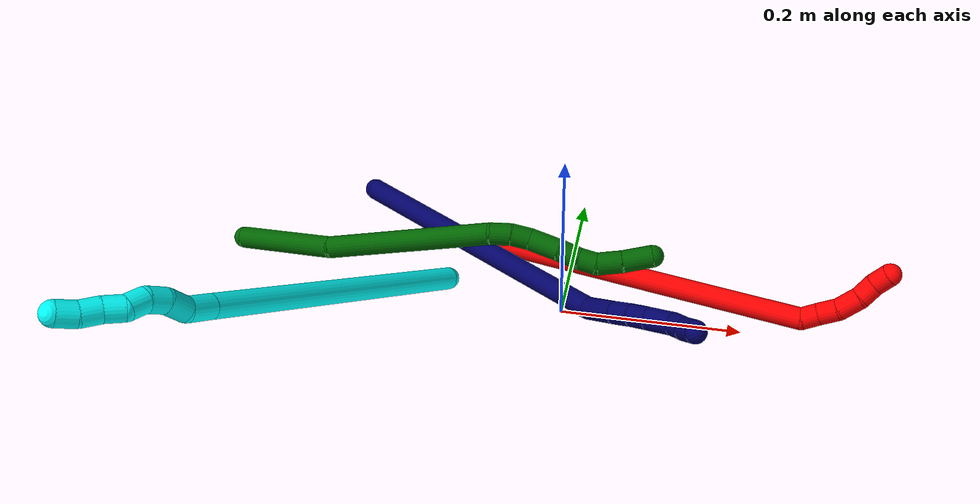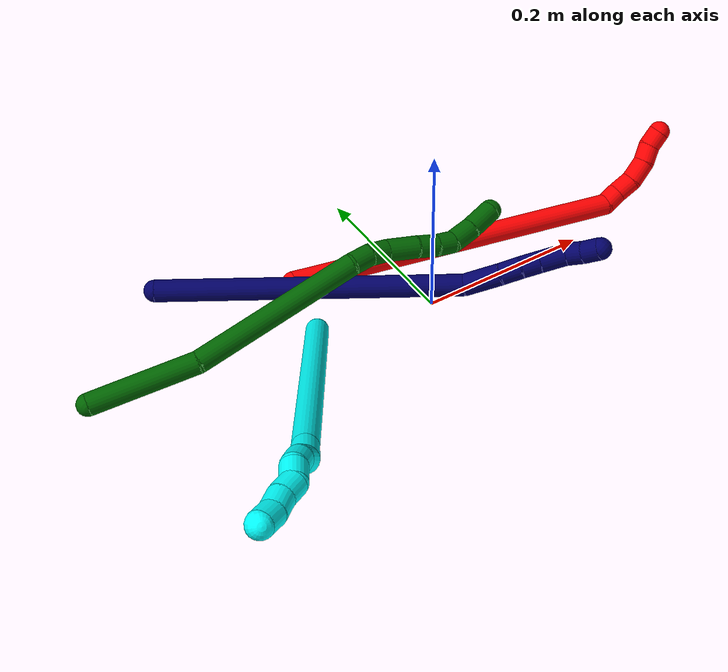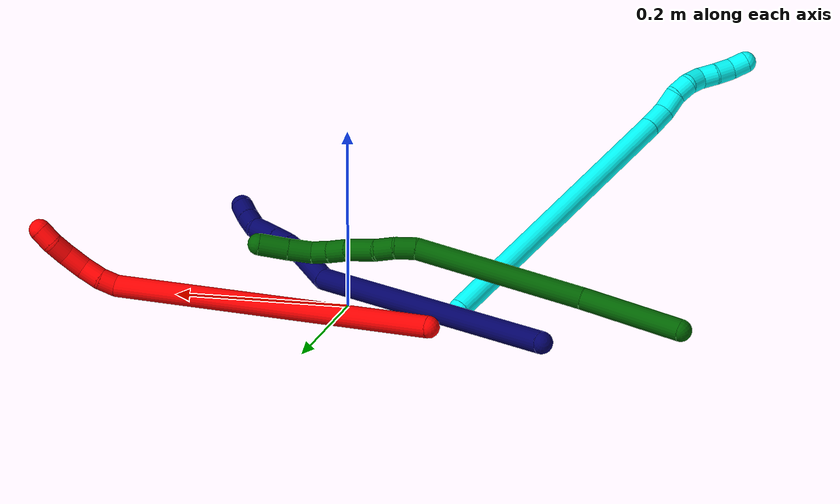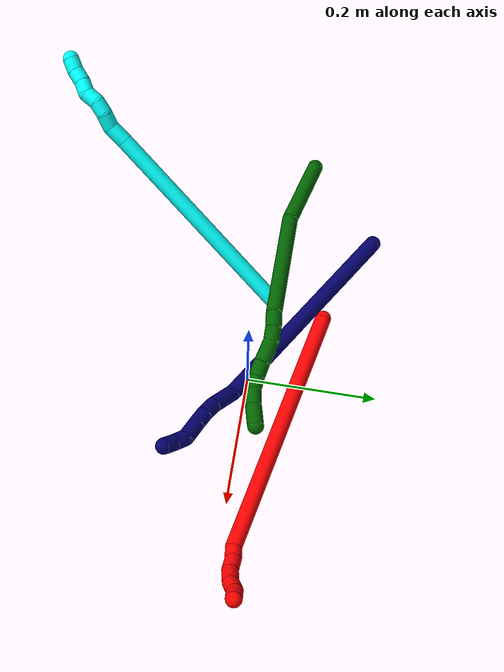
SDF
<sdf version="1.7">
 <world name="default">
  <model name="2">
   <static>0</static>
   <link name="2">
    <collision name="collision-cylinder-e_1_1_4">
     <pose>0.191513 -0.035185 0.012553 1.22811 1.37815 1.05228</pose>
     <geometry><cylinder><radius>0.0125</radius><length>0.390245</length></cylinder></geometry>
     <surface>
      <friction><ode><mu>1.16</mu><mu2>1.16</mu2><slip1>0</slip1><slip2>0</slip2></ode></friction>
      <contact><ode><kp>1e+06</kp><kd>1</kd><max_vel>0</max_vel><min_depth>0.001</min_depth></ode></contact>
     </surface>
    </collision>
    <visual name="visual-cylinder-e_1_1_4">
     <pose>0.191513 -0.035185 0.012553 1.22811 1.37815 1.05228</pose>
     <geometry><cylinder><radius>0.0125</radius><length>0.390245</length></cylinder></geometry>
     <material><ambient>1 0 0 1</ambient></material>
    </visual>
    <collision name="collision-cylinder-e_2_4_5">
     <pose>0.392519 -0.067656 0.023351 -2.14477 1.24267 -1.8416</pose>
     <geometry><cylinder><radius>0.0125</radius><length>0.020057</length></cylinder></geometry>
     <surface>
      <friction><ode><mu>1.16</mu><mu2>1.16</mu2><slip1>0</slip1><slip2>0</slip2></ode></friction>
      <contact><ode><kp>1e+06</kp><kd>1</kd><max_vel>0</max_vel><min_depth>0.001</min_depth></ode></contact>
     </surface>
    </collision>
    <visual name="visual-cylinder-e_2_4_5">
     <pose>0.392519 -0.067656 0.023351 -2.14477 1.24267 -1.8416</pose>
     <geometry><cylinder><radius>0.0125</radius><length>0.020057</length></cylinder></geometry>
     <material><ambient>1 0 0 1</ambient></material>
    </visual>
    <collision name="collision-cylinder-e_3_5_6">
     <pose>0.412744 -0.061145 0.022026 -1.45808 1.22869 -1.12446</pose>
     <geometry><cylinder><radius>0.0125</radius><length>0.022783</length></cylinder></geometry>
     <surface>
      <friction><ode><mu>1.16</mu><mu2>1.16</mu2><slip1>0</slip1><slip2>0</slip2></ode></friction>
      <contact><ode><kp>1e+06</kp><kd>1</kd><max_vel>0</max_vel><min_depth>0.001</min_depth></ode></contact>
     </surface>
    </collision>
    <visual name="visual-cylinder-e_3_5_6">
     <pose>0.412744 -0.061145 0.022026 -1.45808 1.22869 -1.12446</pose>
     <geometry><cylinder><radius>0.0125</radius><length>0.022783</length></cylinder></geometry>
     <material><ambient>1 0 0 1</ambient></material>
    </visual>
    <collision name="collision-cylinder-e_4_6_7">
     <pose>0.434331 -0.05053 0.020582 -1.83898 0.99353 -1.23638</pose>
     <geometry><cylinder><radius>0.0125</radius><length>0.025911</length></cylinder></geometry>
     <surface>
      <friction><ode><mu>1.16</mu><mu2>1.16</mu2><slip1>0</slip1><slip2>0</slip2></ode></friction>
      <contact><ode><kp>1e+06</kp><kd>1</kd><max_vel>0</max_vel><min_depth>0.001</min_depth></ode></contact>
     </surface>
    </collision>
    <visual name="visual-cylinder-e_4_6_7">
     <pose>0.434331 -0.05053 0.020582 -1.83898 0.99353 -1.23638</pose>
     <geometry><cylinder><radius>0.0125</radius><length>0.025911</length></cylinder></geometry>
     <material><ambient>1 0 0 1</ambient></material>
    </visual>
    <collision name="collision-cylinder-e_5_7_8">
     <pose>0.452387 -0.036876 0.015407 -2.02071 0.758856 -1.13208</pose>
     <geometry><cylinder><radius>0.0125</radius><length>0.020927</length></cylinder></geometry>
     <surface>
      <friction><ode><mu>1.16</mu><mu2>1.16</mu2><slip1>0</slip1><slip2>0</slip2></ode></friction>
      <contact><ode><kp>1e+06</kp><kd>1</kd><max_vel>0</max_vel><min_depth>0.001</min_depth></ode></contact>
     </surface>
    </collision>
    <visual name="visual-cylinder-e_5_7_8">
     <pose>0.452387 -0.036876 0.015407 -2.02071 0.758856 -1.13208</pose>
     <geometry><cylinder><radius>0.0125</radius><length>0.020927</length></cylinder></geometry>
     <material><ambient>1 0 0 1</ambient></material>
    </visual>
    <collision name="collision-cylinder-e_6_8_2">
     <pose>0.467515 -0.02388 0.012102 -1.57129 0.910298 -0.910691</pose>
     <geometry><cylinder><radius>0.0125</radius><length>0.020077</length></cylinder></geometry>
     <surface>
      <friction><ode><mu>1.16</mu><mu2>1.16</mu2><slip1>0</slip1><slip2>0</slip2></ode></friction>
      <contact><ode><kp>1e+06</kp><kd>1</kd><max_vel>0</max_vel><min_depth>0.001</min_depth></ode></contact>
     </surface>
    </collision>
    <visual name="visual-cylinder-e_6_8_2">
     <pose>0.467515 -0.02388 0.012102 -1.57129 0.910298 -0.910691</pose>
     <geometry><cylinder><radius>0.0125</radius><length>0.020077</length></cylinder></geometry>
     <material><ambient>1 0 0 1</ambient></material>
    </visual>
    <collision name="collision-sphere-2">
     <pose>0.475442 -0.017721 0.012099 0 -0 0</pose>
     <geometry><sphere><radius>0.0125</radius></sphere></geometry>
     <surface>
      <friction><ode><mu>1.16</mu><mu2>1.16</mu2><slip1>0</slip1><slip2>0</slip2></ode></friction>
      <contact><ode><kp>1e+06</kp><kd>1</kd><max_vel>0</max_vel><min_depth>0.001</min_depth></ode></contact>
     </surface>
    </collision>
    <visual name="visual-sphere-2">
     <pose>0.475442 -0.017721 0.012099 0 -0 0</pose>
     <geometry><sphere><radius>0.0125</radius></sphere></geometry>
     <material><ambient>1 0 0 1</ambient></material>
    </visual>
    <collision name="collision-sphere-4">
     <pose>0.383026 -0.07037 0.025106 0 -0 0</pose>
     <geometry><sphere><radius>0.0125</radius></sphere></geometry>
     <surface>
      <friction><ode><mu>1.16</mu><mu2>1.16</mu2><slip1>0</slip1><slip2>0</slip2></ode></friction>
      <contact><ode><kp>1e+06</kp><kd>1</kd><max_vel>0</max_vel><min_depth>0.001</min_depth></ode></contact>
     </surface>
    </collision>
    <visual name="visual-sphere-4">
     <pose>0.383026 -0.07037 0.025106 0 -0 0</pose>
     <geometry><sphere><radius>0.0125</radius></sphere></geometry>
     <material><ambient>1 0 0 1</ambient></material>
    </visual>
    <collision name="collision-sphere-1">
     <geometry><sphere><radius>0.0125</radius></sphere></geometry>
     <surface>
      <friction><ode><mu>1.16</mu><mu2>1.16</mu2><slip1>0</slip1><slip2>0</slip2></ode></friction>
      <contact><ode><kp>1e+06</kp><kd>1</kd><max_vel>0</max_vel><min_depth>0.001</min_depth></ode></contact>
     </surface>
    </collision>
    <visual name="visual-sphere-1">
     <geometry><sphere><radius>0.0125</radius></sphere></geometry>
     <material><ambient>1 0 0 1</ambient></material>
    </visual>
    <collision name="collision-sphere-8">
     <pose>0.459587 -0.030039 0.012105 0 -0 0</pose>
     <geometry><sphere><radius>0.0125</radius></sphere></geometry>
     <surface>
      <friction><ode><mu>1.16</mu><mu2>1.16</mu2><slip1>0</slip1><slip2>0</slip2></ode></friction>
      <contact><ode><kp>1e+06</kp><kd>1</kd><max_vel>0</max_vel><min_depth>0.001</min_depth></ode></contact>
     </surface>
    </collision>
    <visual name="visual-sphere-8">
     <pose>0.459587 -0.030039 0.012105 0 -0 0</pose>
     <geometry><sphere><radius>0.0125</radius></sphere></geometry>
     <material><ambient>1 0 0 1</ambient></material>
    </visual>
    <collision name="collision-sphere-5">
     <pose>0.402013 -0.064942 0.021596 0 -0 0</pose>
     <geometry><sphere><radius>0.0125</radius></sphere></geometry>
     <surface>
      <friction><ode><mu>1.16</mu><mu2>1.16</mu2><slip1>0</slip1><slip2>0</slip2></ode></friction>
      <contact><ode><kp>1e+06</kp><kd>1</kd><max_vel>0</max_vel><min_depth>0.001</min_depth></ode></contact>
     </surface>
    </collision>
    <visual name="visual-sphere-5">
     <pose>0.402013 -0.064942 0.021596 0 -0 0</pose>
     <geometry><sphere><radius>0.0125</radius></sphere></geometry>
     <material><ambient>1 0 0 1</ambient></material>
    </visual>
    <collision name="collision-sphere-6">
     <pose>0.423475 -0.057348 0.022456 0 -0 0</pose>
     <geometry><sphere><radius>0.0125</radius></sphere></geometry>
     <surface>
      <friction><ode><mu>1.16</mu><mu2>1.16</mu2><slip1>0</slip1><slip2>0</slip2></ode></friction>
      <contact><ode><kp>1e+06</kp><kd>1</kd><max_vel>0</max_vel><min_depth>0.001</min_depth></ode></contact>
     </surface>
    </collision>
    <visual name="visual-sphere-6">
     <pose>0.423475 -0.057348 0.022456 0 -0 0</pose>
     <geometry><sphere><radius>0.0125</radius></sphere></geometry>
     <material><ambient>1 0 0 1</ambient></material>
    </visual>
    <collision name="collision-sphere-7">
     <pose>0.445187 -0.043713 0.018709 0 -0 0</pose>
     <geometry><sphere><radius>0.0125</radius></sphere></geometry>
     <surface>
      <friction><ode><mu>1.16</mu><mu2>1.16</mu2><slip1>0</slip1><slip2>0</slip2></ode></friction>
      <contact><ode><kp>1e+06</kp><kd>1</kd><max_vel>0</max_vel><min_depth>0.001</min_depth></ode></contact>
     </surface>
    </collision>
    <visual name="visual-sphere-7">
     <pose>0.445187 -0.043713 0.018709 0 -0 0</pose>
     <geometry><sphere><radius>0.0125</radius></sphere></geometry>
     <material><ambient>1 0 0 1</ambient></material>
    </visual>
    <inertial>
     <pose>0.244241 -0.038083 0.013935 0 -0 0</pose>
     <mass>0.5</mass>
     <inertia>
      <ixx>0.001332</ixx>
      <ixy>0</ixy>
      <ixz>0</ixz>
      <iyy>0.005643</iyy>
      <iyz>0</iyz>
      <izz>-0.003991</izz>
     </inertia>
    </inertial>
   </link>
   <pose>-0.117367 0.102978 0.011497 1.36763 -0.165202 -0.110599</pose>
  </model>
  <model name="3">
   <static>0</static>
   <link name="3">
    <collision name="collision-cylinder-e_1_1_4">
     <pose>-0.026283 -0.049452 0.163172 0.294264 -0.152947 -0.022711</pose>
     <geometry><cylinder><radius>0.0125</radius><length>0.34503</length></cylinder></geometry>
     <surface>
      <friction><ode><mu>1.16</mu><mu2>1.16</mu2><slip1>0</slip1><slip2>0</slip2></ode></friction>
      <contact><ode><kp>1e+06</kp><kd>1</kd><max_vel>0</max_vel><min_depth>0.001</min_depth></ode></contact>
     </surface>
    </collision>
    <visual name="visual-cylinder-e_1_1_4">
     <pose>-0.026283 -0.049452 0.163172 0.294264 -0.152947 -0.022711</pose>
     <geometry><cylinder><radius>0.0125</radius><length>0.34503</length></cylinder></geometry>
     <material><ambient>0.003922 1 0.996078 1</ambient></material>
    </visual>
    <collision name="collision-cylinder-e_2_4_5">
     <pose>-0.054302 -0.102875 0.340395 0.275486 -0.118378 -0.016428</pose>
     <geometry><cylinder><radius>0.0125</radius><length>0.029407</length></cylinder></geometry>
     <surface>
      <friction><ode><mu>1.16</mu><mu2>1.16</mu2><slip1>0</slip1><slip2>0</slip2></ode></friction>
      <contact><ode><kp>1e+06</kp><kd>1</kd><max_vel>0</max_vel><min_depth>0.001</min_depth></ode></contact>
     </surface>
    </collision>
    <visual name="visual-cylinder-e_2_4_5">
     <pose>-0.054302 -0.102875 0.340395 0.275486 -0.118378 -0.016428</pose>
     <geometry><cylinder><radius>0.0125</radius><length>0.029407</length></cylinder></geometry>
     <material><ambient>0.003922 1 0.996078 1</ambient></material>
    </visual>
    <collision name="collision-cylinder-e_3_5_6">
     <pose>-0.060484 -0.105799 0.365669 -0.092973 -0.375601 0.017681</pose>
     <geometry><cylinder><radius>0.0125</radius><length>0.024236</length></cylinder></geometry>
     <surface>
      <friction><ode><mu>1.16</mu><mu2>1.16</mu2><slip1>0</slip1><slip2>0</slip2></ode></friction>
      <contact><ode><kp>1e+06</kp><kd>1</kd><max_vel>0</max_vel><min_depth>0.001</min_depth></ode></contact>
     </surface>
    </collision>
    <visual name="visual-cylinder-e_3_5_6">
     <pose>-0.060484 -0.105799 0.365669 -0.092973 -0.375601 0.017681</pose>
     <geometry><cylinder><radius>0.0125</radius><length>0.024236</length></cylinder></geometry>
     <material><ambient>0.003922 1 0.996078 1</ambient></material>
    </visual>
    <collision name="collision-cylinder-e_4_6_7">
     <pose>-0.068228 -0.107142 0.386208 0.251067 -0.330456 -0.04208</pose>
     <geometry><cylinder><radius>0.0125</radius><length>0.020332</length></cylinder></geometry>
     <surface>
      <friction><ode><mu>1.16</mu><mu2>1.16</mu2><slip1>0</slip1><slip2>0</slip2></ode></friction>
      <contact><ode><kp>1e+06</kp><kd>1</kd><max_vel>0</max_vel><min_depth>0.001</min_depth></ode></contact>
     </surface>
    </collision>
    <visual name="visual-cylinder-e_4_6_7">
     <pose>-0.068228 -0.107142 0.386208 0.251067 -0.330456 -0.04208</pose>
     <geometry><cylinder><radius>0.0125</radius><length>0.020332</length></cylinder></geometry>
     <material><ambient>0.003922 1 0.996078 1</ambient></material>
    </visual>
    <collision name="collision-cylinder-e_5_7_8">
     <pose>-0.072146 -0.115159 0.403977 0.587366 -0.060905 -0.018425</pose>
     <geometry><cylinder><radius>0.0125</radius><length>0.02035</length></cylinder></geometry>
     <surface>
      <friction><ode><mu>1.16</mu><mu2>1.16</mu2><slip1>0</slip1><slip2>0</slip2></ode></friction>
      <contact><ode><kp>1e+06</kp><kd>1</kd><max_vel>0</max_vel><min_depth>0.001</min_depth></ode></contact>
     </surface>
    </collision>
    <visual name="visual-cylinder-e_5_7_8">
     <pose>-0.072146 -0.115159 0.403977 0.587366 -0.060905 -0.018425</pose>
     <geometry><cylinder><radius>0.0125</radius><length>0.02035</length></cylinder></geometry>
     <material><ambient>0.003922 1 0.996078 1</ambient></material>
    </visual>
    <collision name="collision-cylinder-e_6_8_9">
     <pose>-0.078221 -0.125872 0.419177 0.645876 -0.57337 -0.196679</pose>
     <geometry><cylinder><radius>0.0125</radius><length>0.020113</length></cylinder></geometry>
     <surface>
      <friction><ode><mu>1.16</mu><mu2>1.16</mu2><slip1>0</slip1><slip2>0</slip2></ode></friction>
      <contact><ode><kp>1e+06</kp><kd>1</kd><max_vel>0</max_vel><min_depth>0.001</min_depth></ode></contact>
     </surface>
    </collision>
    <visual name="visual-cylinder-e_6_8_9">
     <pose>-0.078221 -0.125872 0.419177 0.645876 -0.57337 -0.196679</pose>
     <geometry><cylinder><radius>0.0125</radius><length>0.020113</length></cylinder></geometry>
     <material><ambient>0.003922 1 0.996078 1</ambient></material>
    </visual>
    <collision name="collision-cylinder-e_7_9_10">
     <pose>-0.087453 -0.136583 0.433591 0.633007 -0.378047 -0.125148</pose>
     <geometry><cylinder><radius>0.0125</radius><length>0.020466</length></cylinder></geometry>
     <surface>
      <friction><ode><mu>1.16</mu><mu2>1.16</mu2><slip1>0</slip1><slip2>0</slip2></ode></friction>
      <contact><ode><kp>1e+06</kp><kd>1</kd><max_vel>0</max_vel><min_depth>0.001</min_depth></ode></contact>
     </surface>
    </collision>
    <visual name="visual-cylinder-e_7_9_10">
     <pose>-0.087453 -0.136583 0.433591 0.633007 -0.378047 -0.125148</pose>
     <geometry><cylinder><radius>0.0125</radius><length>0.020466</length></cylinder></geometry>
     <material><ambient>0.003922 1 0.996078 1</ambient></material>
    </visual>
    <collision name="collision-cylinder-e_8_10_2">
     <pose>-0.096574 -0.146 0.448858 0.462738 -0.561714 -0.135717</pose>
     <geometry><cylinder><radius>0.0125</radius><length>0.020066</length></cylinder></geometry>
     <surface>
      <friction><ode><mu>1.16</mu><mu2>1.16</mu2><slip1>0</slip1><slip2>0</slip2></ode></friction>
      <contact><ode><kp>1e+06</kp><kd>1</kd><max_vel>0</max_vel><min_depth>0.001</min_depth></ode></contact>
     </surface>
    </collision>
    <visual name="visual-cylinder-e_8_10_2">
     <pose>-0.096574 -0.146 0.448858 0.462738 -0.561714 -0.135717</pose>
     <geometry><cylinder><radius>0.0125</radius><length>0.020066</length></cylinder></geometry>
     <material><ambient>0.003922 1 0.996078 1</ambient></material>
    </visual>
    <collision name="collision-sphere-2">
     <pose>-0.101918 -0.149791 0.456456 0 -0 0</pose>
     <geometry><sphere><radius>0.0125</radius></sphere></geometry>
     <surface>
      <friction><ode><mu>1.16</mu><mu2>1.16</mu2><slip1>0</slip1><slip2>0</slip2></ode></friction>
      <contact><ode><kp>1e+06</kp><kd>1</kd><max_vel>0</max_vel><min_depth>0.001</min_depth></ode></contact>
     </surface>
    </collision>
    <visual name="visual-sphere-2">
     <pose>-0.101918 -0.149791 0.456456 0 -0 0</pose>
     <geometry><sphere><radius>0.0125</radius></sphere></geometry>
     <material><ambient>0.003922 1 0.996078 1</ambient></material>
    </visual>
    <collision name="collision-sphere-10">
     <pose>-0.09123 -0.142209 0.441259 0 -0 0</pose>
     <geometry><sphere><radius>0.0125</radius></sphere></geometry>
     <surface>
      <friction><ode><mu>1.16</mu><mu2>1.16</mu2><slip1>0</slip1><slip2>0</slip2></ode></friction>
      <contact><ode><kp>1e+06</kp><kd>1</kd><max_vel>0</max_vel><min_depth>0.001</min_depth></ode></contact>
     </surface>
    </collision>
    <visual name="visual-sphere-10">
     <pose>-0.09123 -0.142209 0.441259 0 -0 0</pose>
     <geometry><sphere><radius>0.0125</radius></sphere></geometry>
     <material><ambient>0.003922 1 0.996078 1</ambient></material>
    </visual>
    <collision name="collision-sphere-9">
     <pose>-0.083676 -0.130957 0.425924 0 -0 0</pose>
     <geometry><sphere><radius>0.0125</radius></sphere></geometry>
     <surface>
      <friction><ode><mu>1.16</mu><mu2>1.16</mu2><slip1>0</slip1><slip2>0</slip2></ode></friction>
      <contact><ode><kp>1e+06</kp><kd>1</kd><max_vel>0</max_vel><min_depth>0.001</min_depth></ode></contact>
     </surface>
    </collision>
    <visual name="visual-sphere-9">
     <pose>-0.083676 -0.130957 0.425924 0 -0 0</pose>
     <geometry><sphere><radius>0.0125</radius></sphere></geometry>
     <material><ambient>0.003922 1 0.996078 1</ambient></material>
    </visual>
    <collision name="collision-sphere-4">
     <pose>-0.052566 -0.098903 0.326345 0 -0 0</pose>
     <geometry><sphere><radius>0.0125</radius></sphere></geometry>
     <surface>
      <friction><ode><mu>1.16</mu><mu2>1.16</mu2><slip1>0</slip1><slip2>0</slip2></ode></friction>
      <contact><ode><kp>1e+06</kp><kd>1</kd><max_vel>0</max_vel><min_depth>0.001</min_depth></ode></contact>
     </surface>
    </collision>
    <visual name="visual-sphere-4">
     <pose>-0.052566 -0.098903 0.326345 0 -0 0</pose>
     <geometry><sphere><radius>0.0125</radius></sphere></geometry>
     <material><ambient>0.003922 1 0.996078 1</ambient></material>
    </visual>
    <collision name="collision-sphere-1">
     <geometry><sphere><radius>0.0125</radius></sphere></geometry>
     <surface>
      <friction><ode><mu>1.16</mu><mu2>1.16</mu2><slip1>0</slip1><slip2>0</slip2></ode></friction>
      <contact><ode><kp>1e+06</kp><kd>1</kd><max_vel>0</max_vel><min_depth>0.001</min_depth></ode></contact>
     </surface>
    </collision>
    <visual name="visual-sphere-1">
     <geometry><sphere><radius>0.0125</radius></sphere></geometry>
     <material><ambient>0.003922 1 0.996078 1</ambient></material>
    </visual>
    <collision name="collision-sphere-8">
     <pose>-0.072765 -0.120787 0.412431 0 -0 0</pose>
     <geometry><sphere><radius>0.0125</radius></sphere></geometry>
     <surface>
      <friction><ode><mu>1.16</mu><mu2>1.16</mu2><slip1>0</slip1><slip2>0</slip2></ode></friction>
      <contact><ode><kp>1e+06</kp><kd>1</kd><max_vel>0</max_vel><min_depth>0.001</min_depth></ode></contact>
     </surface>
    </collision>
    <visual name="visual-sphere-8">
     <pose>-0.072765 -0.120787 0.412431 0 -0 0</pose>
     <geometry><sphere><radius>0.0125</radius></sphere></geometry>
     <material><ambient>0.003922 1 0.996078 1</ambient></material>
    </visual>
    <collision name="collision-sphere-5">
     <pose>-0.056039 -0.106846 0.354444 0 -0 0</pose>
     <geometry><sphere><radius>0.0125</radius></sphere></geometry>
     <surface>
      <friction><ode><mu>1.16</mu><mu2>1.16</mu2><slip1>0</slip1><slip2>0</slip2></ode></friction>
      <contact><ode><kp>1e+06</kp><kd>1</kd><max_vel>0</max_vel><min_depth>0.001</min_depth></ode></contact>
     </surface>
    </collision>
    <visual name="visual-sphere-5">
     <pose>-0.056039 -0.106846 0.354444 0 -0 0</pose>
     <geometry><sphere><radius>0.0125</radius></sphere></geometry>
     <material><ambient>0.003922 1 0.996078 1</ambient></material>
    </visual>
    <collision name="collision-sphere-6">
     <pose>-0.06493 -0.104753 0.376894 0 -0 0</pose>
     <geometry><sphere><radius>0.0125</radius></sphere></geometry>
     <surface>
      <friction><ode><mu>1.16</mu><mu2>1.16</mu2><slip1>0</slip1><slip2>0</slip2></ode></friction>
      <contact><ode><kp>1e+06</kp><kd>1</kd><max_vel>0</max_vel><min_depth>0.001</min_depth></ode></contact>
     </surface>
    </collision>
    <visual name="visual-sphere-6">
     <pose>-0.06493 -0.104753 0.376894 0 -0 0</pose>
     <geometry><sphere><radius>0.0125</radius></sphere></geometry>
     <material><ambient>0.003922 1 0.996078 1</ambient></material>
    </visual>
    <collision name="collision-sphere-7">
     <pose>-0.071527 -0.109531 0.395523 0 -0 0</pose>
     <geometry><sphere><radius>0.0125</radius></sphere></geometry>
     <surface>
      <friction><ode><mu>1.16</mu><mu2>1.16</mu2><slip1>0</slip1><slip2>0</slip2></ode></friction>
      <contact><ode><kp>1e+06</kp><kd>1</kd><max_vel>0</max_vel><min_depth>0.001</min_depth></ode></contact>
     </surface>
    </collision>
    <visual name="visual-sphere-7">
     <pose>-0.071527 -0.109531 0.395523 0 -0 0</pose>
     <geometry><sphere><radius>0.0125</radius></sphere></geometry>
     <material><ambient>0.003922 1 0.996078 1</ambient></material>
    </visual>
    <inertial>
     <pose>-0.040575 -0.07086 0.235113 0 -0 0</pose>
     <mass>0.5</mass>
     <inertia>
      <ixx>0.003322</ixx>
      <ixy>0</ixy>
      <ixz>0</ixz>
      <iyy>0.003214</iyy>
      <iyz>0</iyz>
      <izz>0.001552</izz>
     </inertia>
    </inertial>
   </link>
   <pose>-0.134037 0.022074 0.011498 0.829934 0.236347 -0.498294</pose>
  </model>
  <model name="6">
   <static>0</static>
   <link name="6">
    <collision name="collision-cylinder-e_1_1_4">
     <pose>0.058253 -0.014541 0.001764 1.45008 1.32446 1.20907</pose>
     <geometry><cylinder><radius>0.0125</radius><length>0.120132</length></cylinder></geometry>
     <surface>
      <friction><ode><mu>1.16</mu><mu2>1.16</mu2><slip1>0</slip1><slip2>0</slip2></ode></friction>
      <contact><ode><kp>1e+06</kp><kd>1</kd><max_vel>0</max_vel><min_depth>0.001</min_depth></ode></contact>
     </surface>
    </collision>
    <visual name="visual-cylinder-e_1_1_4">
     <pose>0.058253 -0.014541 0.001764 1.45008 1.32446 1.20907</pose>
     <geometry><cylinder><radius>0.0125</radius><length>0.120132</length></cylinder></geometry>
     <material><ambient>0 0.392157 0.003922 1</ambient></material>
    </visual>
    <collision name="collision-cylinder-e_2_4_5">
     <pose>0.203977 -0.064193 0.024389 1.0347 1.13397 0.695225</pose>
     <geometry><cylinder><radius>0.0125</radius><length>0.193073</length></cylinder></geometry>
     <surface>
      <friction><ode><mu>1.16</mu><mu2>1.16</mu2><slip1>0</slip1><slip2>0</slip2></ode></friction>
      <contact><ode><kp>1e+06</kp><kd>1</kd><max_vel>0</max_vel><min_depth>0.001</min_depth></ode></contact>
     </surface>
    </collision>
    <visual name="visual-cylinder-e_2_4_5">
     <pose>0.203977 -0.064193 0.024389 1.0347 1.13397 0.695225</pose>
     <geometry><cylinder><radius>0.0125</radius><length>0.193073</length></cylinder></geometry>
     <material><ambient>0 0.392157 0.003922 1</ambient></material>
    </visual>
    <collision name="collision-cylinder-e_3_5_6">
     <pose>0.302168 -0.101485 0.050139 0.419346 1.10767 0.261686</pose>
     <geometry><cylinder><radius>0.0125</radius><length>0.023965</length></cylinder></geometry>
     <surface>
      <friction><ode><mu>1.16</mu><mu2>1.16</mu2><slip1>0</slip1><slip2>0</slip2></ode></friction>
      <contact><ode><kp>1e+06</kp><kd>1</kd><max_vel>0</max_vel><min_depth>0.001</min_depth></ode></contact>
     </surface>
    </collision>
    <visual name="visual-cylinder-e_3_5_6">
     <pose>0.302168 -0.101485 0.050139 0.419346 1.10767 0.261686</pose>
     <geometry><cylinder><radius>0.0125</radius><length>0.023965</length></cylinder></geometry>
     <material><ambient>0 0.392157 0.003922 1</ambient></material>
    </visual>
    <collision name="collision-cylinder-e_4_6_7">
     <pose>0.323194 -0.103447 0.058922 -0.055688 1.20906 -0.038475</pose>
     <geometry><cylinder><radius>0.0125</radius><length>0.022037</length></cylinder></geometry>
     <surface>
      <friction><ode><mu>1.16</mu><mu2>1.16</mu2><slip1>0</slip1><slip2>0</slip2></ode></friction>
      <contact><ode><kp>1e+06</kp><kd>1</kd><max_vel>0</max_vel><min_depth>0.001</min_depth></ode></contact>
     </surface>
    </collision>
    <visual name="visual-cylinder-e_4_6_7">
     <pose>0.323194 -0.103447 0.058922 -0.055688 1.20906 -0.038475</pose>
     <geometry><cylinder><radius>0.0125</radius><length>0.022037</length></cylinder></geometry>
     <material><ambient>0 0.392157 0.003922 1</ambient></material>
    </visual>
    <collision name="collision-cylinder-e_5_7_8">
     <pose>0.351139 -0.102481 0.06477 -0.365775 1.45266 -0.325691</pose>
     <geometry><cylinder><radius>0.0125</radius><length>0.035529</length></cylinder></geometry>
     <surface>
      <friction><ode><mu>1.16</mu><mu2>1.16</mu2><slip1>0</slip1><slip2>0</slip2></ode></friction>
      <contact><ode><kp>1e+06</kp><kd>1</kd><max_vel>0</max_vel><min_depth>0.001</min_depth></ode></contact>
     </surface>
    </collision>
    <visual name="visual-cylinder-e_5_7_8">
     <pose>0.351139 -0.102481 0.06477 -0.365775 1.45266 -0.325691</pose>
     <geometry><cylinder><radius>0.0125</radius><length>0.035529</length></cylinder></geometry>
     <material><ambient>0 0.392157 0.003922 1</ambient></material>
    </visual>
    <collision name="collision-cylinder-e_6_8_9">
     <pose>0.380126 -0.100393 0.068766 -0.580747 1.3589 -0.473683</pose>
     <geometry><cylinder><radius>0.0125</radius><length>0.023211</length></cylinder></geometry>
     <surface>
      <friction><ode><mu>1.16</mu><mu2>1.16</mu2><slip1>0</slip1><slip2>0</slip2></ode></friction>
      <contact><ode><kp>1e+06</kp><kd>1</kd><max_vel>0</max_vel><min_depth>0.001</min_depth></ode></contact>
     </surface>
    </collision>
    <visual name="visual-cylinder-e_6_8_9">
     <pose>0.380126 -0.100393 0.068766 -0.580747 1.3589 -0.473683</pose>
     <geometry><cylinder><radius>0.0125</radius><length>0.023211</length></cylinder></geometry>
     <material><ambient>0 0.392157 0.003922 1</ambient></material>
    </visual>
    <collision name="collision-cylinder-e_7_9_10">
     <pose>0.401397 -0.098896 0.073261 -0.064409 1.32787 -0.050402</pose>
     <geometry><cylinder><radius>0.0125</radius><length>0.02045</length></cylinder></geometry>
     <surface>
      <friction><ode><mu>1.16</mu><mu2>1.16</mu2><slip1>0</slip1><slip2>0</slip2></ode></friction>
      <contact><ode><kp>1e+06</kp><kd>1</kd><max_vel>0</max_vel><min_depth>0.001</min_depth></ode></contact>
     </surface>
    </collision>
    <visual name="visual-cylinder-e_7_9_10">
     <pose>0.401397 -0.098896 0.073261 -0.064409 1.32787 -0.050402</pose>
     <geometry><cylinder><radius>0.0125</radius><length>0.02045</length></cylinder></geometry>
     <material><ambient>0 0.392157 0.003922 1</ambient></material>
    </visual>
    <collision name="collision-cylinder-e_8_10_11">
     <pose>0.4233 -0.10305 0.081378 0.650857 1.03466 0.379387</pose>
     <geometry><cylinder><radius>0.0125</radius><length>0.027868</length></cylinder></geometry>
     <surface>
      <friction><ode><mu>1.16</mu><mu2>1.16</mu2><slip1>0</slip1><slip2>0</slip2></ode></friction>
      <contact><ode><kp>1e+06</kp><kd>1</kd><max_vel>0</max_vel><min_depth>0.001</min_depth></ode></contact>
     </surface>
    </collision>
    <visual name="visual-cylinder-e_8_10_11">
     <pose>0.4233 -0.10305 0.081378 0.650857 1.03466 0.379387</pose>
     <geometry><cylinder><radius>0.0125</radius><length>0.027868</length></cylinder></geometry>
     <material><ambient>0 0.392157 0.003922 1</ambient></material>
    </visual>
    <collision name="collision-cylinder-e_9_11_2">
     <pose>0.448993 -0.113805 0.094454 0.715515 0.949326 0.379573</pose>
     <geometry><cylinder><radius>0.0125</radius><length>0.033736</length></cylinder></geometry>
     <surface>
      <friction><ode><mu>1.16</mu><mu2>1.16</mu2><slip1>0</slip1><slip2>0</slip2></ode></friction>
      <contact><ode><kp>1e+06</kp><kd>1</kd><max_vel>0</max_vel><min_depth>0.001</min_depth></ode></contact>
     </surface>
    </collision>
    <visual name="visual-cylinder-e_9_11_2">
     <pose>0.448993 -0.113805 0.094454 0.715515 0.949326 0.379573</pose>
     <geometry><cylinder><radius>0.0125</radius><length>0.033736</length></cylinder></geometry>
     <material><ambient>0 0.392157 0.003922 1</ambient></material>
    </visual>
    <collision name="collision-sphere-2">
     <pose>0.462708 -0.120248 0.101866 0 -0 0</pose>
     <geometry><sphere><radius>0.0125</radius></sphere></geometry>
     <surface>
      <friction><ode><mu>1.16</mu><mu2>1.16</mu2><slip1>0</slip1><slip2>0</slip2></ode></friction>
      <contact><ode><kp>1e+06</kp><kd>1</kd><max_vel>0</max_vel><min_depth>0.001</min_depth></ode></contact>
     </surface>
    </collision>
    <visual name="visual-sphere-2">
     <pose>0.462708 -0.120248 0.101866 0 -0 0</pose>
     <geometry><sphere><radius>0.0125</radius></sphere></geometry>
     <material><ambient>0 0.392157 0.003922 1</ambient></material>
    </visual>
    <collision name="collision-sphere-11">
     <pose>0.435279 -0.107362 0.087041 0 -0 0</pose>
     <geometry><sphere><radius>0.0125</radius></sphere></geometry>
     <surface>
      <friction><ode><mu>1.16</mu><mu2>1.16</mu2><slip1>0</slip1><slip2>0</slip2></ode></friction>
      <contact><ode><kp>1e+06</kp><kd>1</kd><max_vel>0</max_vel><min_depth>0.001</min_depth></ode></contact>
     </surface>
    </collision>
    <visual name="visual-sphere-11">
     <pose>0.435279 -0.107362 0.087041 0 -0 0</pose>
     <geometry><sphere><radius>0.0125</radius></sphere></geometry>
     <material><ambient>0 0.392157 0.003922 1</ambient></material>
    </visual>
    <collision name="collision-sphere-10">
     <pose>0.411321 -0.098737 0.075716 0 -0 0</pose>
     <geometry><sphere><radius>0.0125</radius></sphere></geometry>
     <surface>
      <friction><ode><mu>1.16</mu><mu2>1.16</mu2><slip1>0</slip1><slip2>0</slip2></ode></friction>
      <contact><ode><kp>1e+06</kp><kd>1</kd><max_vel>0</max_vel><min_depth>0.001</min_depth></ode></contact>
     </surface>
    </collision>
    <visual name="visual-sphere-10">
     <pose>0.411321 -0.098737 0.075716 0 -0 0</pose>
     <geometry><sphere><radius>0.0125</radius></sphere></geometry>
     <material><ambient>0 0.392157 0.003922 1</ambient></material>
    </visual>
    <collision name="collision-sphere-9">
     <pose>0.391472 -0.099054 0.070807 0 -0 0</pose>
     <geometry><sphere><radius>0.0125</radius></sphere></geometry>
     <surface>
      <friction><ode><mu>1.16</mu><mu2>1.16</mu2><slip1>0</slip1><slip2>0</slip2></ode></friction>
      <contact><ode><kp>1e+06</kp><kd>1</kd><max_vel>0</max_vel><min_depth>0.001</min_depth></ode></contact>
     </surface>
    </collision>
    <visual name="visual-sphere-9">
     <pose>0.391472 -0.099054 0.070807 0 -0 0</pose>
     <geometry><sphere><radius>0.0125</radius></sphere></geometry>
     <material><ambient>0 0.392157 0.003922 1</ambient></material>
    </visual>
    <collision name="collision-sphere-4">
     <pose>0.116505 -0.029082 0.003528 0 -0 0</pose>
     <geometry><sphere><radius>0.0125</radius></sphere></geometry>
     <surface>
      <friction><ode><mu>1.16</mu><mu2>1.16</mu2><slip1>0</slip1><slip2>0</slip2></ode></friction>
      <contact><ode><kp>1e+06</kp><kd>1</kd><max_vel>0</max_vel><min_depth>0.001</min_depth></ode></contact>
     </surface>
    </collision>
    <visual name="visual-sphere-4">
     <pose>0.116505 -0.029082 0.003528 0 -0 0</pose>
     <geometry><sphere><radius>0.0125</radius></sphere></geometry>
     <material><ambient>0 0.392157 0.003922 1</ambient></material>
    </visual>
    <collision name="collision-sphere-1">
     <geometry><sphere><radius>0.0125</radius></sphere></geometry>
     <surface>
      <friction><ode><mu>1.16</mu><mu2>1.16</mu2><slip1>0</slip1><slip2>0</slip2></ode></friction>
      <contact><ode><kp>1e+06</kp><kd>1</kd><max_vel>0</max_vel><min_depth>0.001</min_depth></ode></contact>
     </surface>
    </collision>
    <visual name="visual-sphere-1">
     <geometry><sphere><radius>0.0125</radius></sphere></geometry>
     <material><ambient>0 0.392157 0.003922 1</ambient></material>
    </visual>
    <collision name="collision-sphere-8">
     <pose>0.36878 -0.101732 0.066726 0 -0 0</pose>
     <geometry><sphere><radius>0.0125</radius></sphere></geometry>
     <surface>
      <friction><ode><mu>1.16</mu><mu2>1.16</mu2><slip1>0</slip1><slip2>0</slip2></ode></friction>
      <contact><ode><kp>1e+06</kp><kd>1</kd><max_vel>0</max_vel><min_depth>0.001</min_depth></ode></contact>
     </surface>
    </collision>
    <visual name="visual-sphere-8">
     <pose>0.36878 -0.101732 0.066726 0 -0 0</pose>
     <geometry><sphere><radius>0.0125</radius></sphere></geometry>
     <material><ambient>0 0.392157 0.003922 1</ambient></material>
    </visual>
    <collision name="collision-sphere-5">
     <pose>0.291448 -0.099305 0.04525 0 -0 0</pose>
     <geometry><sphere><radius>0.0125</radius></sphere></geometry>
     <surface>
      <friction><ode><mu>1.16</mu><mu2>1.16</mu2><slip1>0</slip1><slip2>0</slip2></ode></friction>
      <contact><ode><kp>1e+06</kp><kd>1</kd><max_vel>0</max_vel><min_depth>0.001</min_depth></ode></contact>
     </surface>
    </collision>
    <visual name="visual-sphere-5">
     <pose>0.291448 -0.099305 0.04525 0 -0 0</pose>
     <geometry><sphere><radius>0.0125</radius></sphere></geometry>
     <material><ambient>0 0.392157 0.003922 1</ambient></material>
    </visual>
    <collision name="collision-sphere-6">
     <pose>0.312888 -0.103664 0.055029 0 -0 0</pose>
     <geometry><sphere><radius>0.0125</radius></sphere></geometry>
     <surface>
      <friction><ode><mu>1.16</mu><mu2>1.16</mu2><slip1>0</slip1><slip2>0</slip2></ode></friction>
      <contact><ode><kp>1e+06</kp><kd>1</kd><max_vel>0</max_vel><min_depth>0.001</min_depth></ode></contact>
     </surface>
    </collision>
    <visual name="visual-sphere-6">
     <pose>0.312888 -0.103664 0.055029 0 -0 0</pose>
     <geometry><sphere><radius>0.0125</radius></sphere></geometry>
     <material><ambient>0 0.392157 0.003922 1</ambient></material>
    </visual>
    <collision name="collision-sphere-7">
     <pose>0.333499 -0.10323 0.062815 0 -0 0</pose>
     <geometry><sphere><radius>0.0125</radius></sphere></geometry>
     <surface>
      <friction><ode><mu>1.16</mu><mu2>1.16</mu2><slip1>0</slip1><slip2>0</slip2></ode></friction>
      <contact><ode><kp>1e+06</kp><kd>1</kd><max_vel>0</max_vel><min_depth>0.001</min_depth></ode></contact>
     </surface>
    </collision>
    <visual name="visual-sphere-7">
     <pose>0.333499 -0.10323 0.062815 0 -0 0</pose>
     <geometry><sphere><radius>0.0125</radius></sphere></geometry>
     <material><ambient>0 0.392157 0.003922 1</ambient></material>
    </visual>
    <inertial>
     <pose>0.23439 -0.067115 0.036541 0 -0 0</pose>
     <mass>0.5</mass>
     <inertia>
      <ixx>0.000453</ixx>
      <ixy>0</ixy>
      <ixz>0</ixz>
      <iyy>0.000892</iyy>
      <iyz>0</iyz>
      <izz>-0.000446</izz>
     </inertia>
    </inertial>
   </link>
   <pose>-0.388501 0.05372 0.012382 -1.91206 0.041976 -0.340173</pose>
  </model>
  <model name="7">
   <static>0</static>
   <link name="7">
    <collision name="collision-cylinder-e_1_1_4">
     <pose>0.115854 -0.008149 -0.125219 3.0766 0.74552 2.97572</pose>
     <geometry><cylinder><radius>0.0125</radius><length>0.341575</length></cylinder></geometry>
     <surface>
      <friction><ode><mu>1.16</mu><mu2>1.16</mu2><slip1>0</slip1><slip2>0</slip2></ode></friction>
      <contact><ode><kp>1e+06</kp><kd>1</kd><max_vel>0</max_vel><min_depth>0.001</min_depth></ode></contact>
     </surface>
    </collision>
    <visual name="visual-cylinder-e_1_1_4">
     <pose>0.115854 -0.008149 -0.125219 3.0766 0.74552 2.97572</pose>
     <geometry><cylinder><radius>0.0125</radius><length>0.341575</length></cylinder></geometry>
     <material><ambient>0.003922 0 0.403922 1</ambient></material>
    </visual>
    <collision name="collision-cylinder-e_2_4_5">
     <pose>0.248487 -0.025643 -0.261412 2.43623 0.86106 1.79036</pose>
     <geometry><cylinder><radius>0.0125</radius><length>0.044239</length></cylinder></geometry>
     <surface>
      <friction><ode><mu>1.16</mu><mu2>1.16</mu2><slip1>0</slip1><slip2>0</slip2></ode></friction>
      <contact><ode><kp>1e+06</kp><kd>1</kd><max_vel>0</max_vel><min_depth>0.001</min_depth></ode></contact>
     </surface>
    </collision>
    <visual name="visual-cylinder-e_2_4_5">
     <pose>0.248487 -0.025643 -0.261412 2.43623 0.86106 1.79036</pose>
     <geometry><cylinder><radius>0.0125</radius><length>0.044239</length></cylinder></geometry>
     <material><ambient>0.003922 0 0.403922 1</ambient></material>
    </visual>
    <collision name="collision-cylinder-e_3_5_6">
     <pose>0.274927 -0.038185 -0.278113 2.6325 0.974378 2.22855</pose>
     <geometry><cylinder><radius>0.0125</radius><length>0.023354</length></cylinder></geometry>
     <surface>
      <friction><ode><mu>1.16</mu><mu2>1.16</mu2><slip1>0</slip1><slip2>0</slip2></ode></friction>
      <contact><ode><kp>1e+06</kp><kd>1</kd><max_vel>0</max_vel><min_depth>0.001</min_depth></ode></contact>
     </surface>
    </collision>
    <visual name="visual-cylinder-e_3_5_6">
     <pose>0.274927 -0.038185 -0.278113 2.6325 0.974378 2.22855</pose>
     <geometry><cylinder><radius>0.0125</radius><length>0.023354</length></cylinder></geometry>
     <material><ambient>0.003922 0 0.403922 1</ambient></material>
    </visual>
    <collision name="collision-cylinder-e_4_6_7">
     <pose>0.293102 -0.04269 -0.289201 2.9021 0.995762 2.7059</pose>
     <geometry><cylinder><radius>0.0125</radius><length>0.020292</length></cylinder></geometry>
     <surface>
      <friction><ode><mu>1.16</mu><mu2>1.16</mu2><slip1>0</slip1><slip2>0</slip2></ode></friction>
      <contact><ode><kp>1e+06</kp><kd>1</kd><max_vel>0</max_vel><min_depth>0.001</min_depth></ode></contact>
     </surface>
    </collision>
    <visual name="visual-cylinder-e_4_6_7">
     <pose>0.293102 -0.04269 -0.289201 2.9021 0.995762 2.7059</pose>
     <geometry><cylinder><radius>0.0125</radius><length>0.020292</length></cylinder></geometry>
     <material><ambient>0.003922 0 0.403922 1</ambient></material>
    </visual>
    <collision name="collision-cylinder-e_5_7_8">
     <pose>0.314329 -0.04555 -0.302599 2.951 0.998707 2.79465</pose>
     <geometry><cylinder><radius>0.0125</radius><length>0.03024</length></cylinder></geometry>
     <surface>
      <friction><ode><mu>1.16</mu><mu2>1.16</mu2><slip1>0</slip1><slip2>0</slip2></ode></friction>
      <contact><ode><kp>1e+06</kp><kd>1</kd><max_vel>0</max_vel><min_depth>0.001</min_depth></ode></contact>
     </surface>
    </collision>
    <visual name="visual-cylinder-e_5_7_8">
     <pose>0.314329 -0.04555 -0.302599 2.951 0.998707 2.79465</pose>
     <geometry><cylinder><radius>0.0125</radius><length>0.03024</length></cylinder></geometry>
     <material><ambient>0.003922 0 0.403922 1</ambient></material>
    </visual>
    <collision name="collision-cylinder-e_6_8_9">
     <pose>0.333319 -0.052125 -0.316818 2.45915 0.667463 1.54683</pose>
     <geometry><cylinder><radius>0.0125</radius><length>0.020285</length></cylinder></geometry>
     <surface>
      <friction><ode><mu>1.16</mu><mu2>1.16</mu2><slip1>0</slip1><slip2>0</slip2></ode></friction>
      <contact><ode><kp>1e+06</kp><kd>1</kd><max_vel>0</max_vel><min_depth>0.001</min_depth></ode></contact>
     </surface>
    </collision>
    <visual name="visual-cylinder-e_6_8_9">
     <pose>0.333319 -0.052125 -0.316818 2.45915 0.667463 1.54683</pose>
     <geometry><cylinder><radius>0.0125</radius><length>0.020285</length></cylinder></geometry>
     <material><ambient>0.003922 0 0.403922 1</ambient></material>
    </visual>
    <collision name="collision-cylinder-e_7_9_2">
     <pose>0.345956 -0.062964 -0.328088 2.28955 0.688503 1.33727</pose>
     <geometry><cylinder><radius>0.0125</radius><length>0.020015</length></cylinder></geometry>
     <surface>
      <friction><ode><mu>1.16</mu><mu2>1.16</mu2><slip1>0</slip1><slip2>0</slip2></ode></friction>
      <contact><ode><kp>1e+06</kp><kd>1</kd><max_vel>0</max_vel><min_depth>0.001</min_depth></ode></contact>
     </surface>
    </collision>
    <visual name="visual-cylinder-e_7_9_2">
     <pose>0.345956 -0.062964 -0.328088 2.28955 0.688503 1.33727</pose>
     <geometry><cylinder><radius>0.0125</radius><length>0.020015</length></cylinder></geometry>
     <material><ambient>0.003922 0 0.403922 1</ambient></material>
    </visual>
    <collision name="collision-sphere-2">
     <pose>0.352315 -0.068781 -0.333177 0 -0 0</pose>
     <geometry><sphere><radius>0.0125</radius></sphere></geometry>
     <surface>
      <friction><ode><mu>1.16</mu><mu2>1.16</mu2><slip1>0</slip1><slip2>0</slip2></ode></friction>
      <contact><ode><kp>1e+06</kp><kd>1</kd><max_vel>0</max_vel><min_depth>0.001</min_depth></ode></contact>
     </surface>
    </collision>
    <visual name="visual-sphere-2">
     <pose>0.352315 -0.068781 -0.333177 0 -0 0</pose>
     <geometry><sphere><radius>0.0125</radius></sphere></geometry>
     <material><ambient>0.003922 0 0.403922 1</ambient></material>
    </visual>
    <collision name="collision-sphere-9">
     <pose>0.339598 -0.057148 -0.323 0 -0 0</pose>
     <geometry><sphere><radius>0.0125</radius></sphere></geometry>
     <surface>
      <friction><ode><mu>1.16</mu><mu2>1.16</mu2><slip1>0</slip1><slip2>0</slip2></ode></friction>
      <contact><ode><kp>1e+06</kp><kd>1</kd><max_vel>0</max_vel><min_depth>0.001</min_depth></ode></contact>
     </surface>
    </collision>
    <visual name="visual-sphere-9">
     <pose>0.339598 -0.057148 -0.323 0 -0 0</pose>
     <geometry><sphere><radius>0.0125</radius></sphere></geometry>
     <material><ambient>0.003922 0 0.403922 1</ambient></material>
    </visual>
    <collision name="collision-sphere-4">
     <pose>0.231709 -0.016299 -0.250437 0 -0 0</pose>
     <geometry><sphere><radius>0.0125</radius></sphere></geometry>
     <surface>
      <friction><ode><mu>1.16</mu><mu2>1.16</mu2><slip1>0</slip1><slip2>0</slip2></ode></friction>
      <contact><ode><kp>1e+06</kp><kd>1</kd><max_vel>0</max_vel><min_depth>0.001</min_depth></ode></contact>
     </surface>
    </collision>
    <visual name="visual-sphere-4">
     <pose>0.231709 -0.016299 -0.250437 0 -0 0</pose>
     <geometry><sphere><radius>0.0125</radius></sphere></geometry>
     <material><ambient>0.003922 0 0.403922 1</ambient></material>
    </visual>
    <collision name="collision-sphere-1">
     <geometry><sphere><radius>0.0125</radius></sphere></geometry>
     <surface>
      <friction><ode><mu>1.16</mu><mu2>1.16</mu2><slip1>0</slip1><slip2>0</slip2></ode></friction>
      <contact><ode><kp>1e+06</kp><kd>1</kd><max_vel>0</max_vel><min_depth>0.001</min_depth></ode></contact>
     </surface>
    </collision>
    <visual name="visual-sphere-1">
     <geometry><sphere><radius>0.0125</radius></sphere></geometry>
     <material><ambient>0.003922 0 0.403922 1</ambient></material>
    </visual>
    <collision name="collision-sphere-8">
     <pose>0.327041 -0.047101 -0.310637 0 -0 0</pose>
     <geometry><sphere><radius>0.0125</radius></sphere></geometry>
     <surface>
      <friction><ode><mu>1.16</mu><mu2>1.16</mu2><slip1>0</slip1><slip2>0</slip2></ode></friction>
      <contact><ode><kp>1e+06</kp><kd>1</kd><max_vel>0</max_vel><min_depth>0.001</min_depth></ode></contact>
     </surface>
    </collision>
    <visual name="visual-sphere-8">
     <pose>0.327041 -0.047101 -0.310637 0 -0 0</pose>
     <geometry><sphere><radius>0.0125</radius></sphere></geometry>
     <material><ambient>0.003922 0 0.403922 1</ambient></material>
    </visual>
    <collision name="collision-sphere-5">
     <pose>0.265266 -0.034988 -0.272386 0 -0 0</pose>
     <geometry><sphere><radius>0.0125</radius></sphere></geometry>
     <surface>
      <friction><ode><mu>1.16</mu><mu2>1.16</mu2><slip1>0</slip1><slip2>0</slip2></ode></friction>
      <contact><ode><kp>1e+06</kp><kd>1</kd><max_vel>0</max_vel><min_depth>0.001</min_depth></ode></contact>
     </surface>
    </collision>
    <visual name="visual-sphere-5">
     <pose>0.265266 -0.034988 -0.272386 0 -0 0</pose>
     <geometry><sphere><radius>0.0125</radius></sphere></geometry>
     <material><ambient>0.003922 0 0.403922 1</ambient></material>
    </visual>
    <collision name="collision-sphere-6">
     <pose>0.284588 -0.041381 -0.28384 0 -0 0</pose>
     <geometry><sphere><radius>0.0125</radius></sphere></geometry>
     <surface>
      <friction><ode><mu>1.16</mu><mu2>1.16</mu2><slip1>0</slip1><slip2>0</slip2></ode></friction>
      <contact><ode><kp>1e+06</kp><kd>1</kd><max_vel>0</max_vel><min_depth>0.001</min_depth></ode></contact>
     </surface>
    </collision>
    <visual name="visual-sphere-6">
     <pose>0.284588 -0.041381 -0.28384 0 -0 0</pose>
     <geometry><sphere><radius>0.0125</radius></sphere></geometry>
     <material><ambient>0.003922 0 0.403922 1</ambient></material>
    </visual>
    <collision name="collision-sphere-7">
     <pose>0.301617 -0.043999 -0.294562 0 -0 0</pose>
     <geometry><sphere><radius>0.0125</radius></sphere></geometry>
     <surface>
      <friction><ode><mu>1.16</mu><mu2>1.16</mu2><slip1>0</slip1><slip2>0</slip2></ode></friction>
      <contact><ode><kp>1e+06</kp><kd>1</kd><max_vel>0</max_vel><min_depth>0.001</min_depth></ode></contact>
     </surface>
    </collision>
    <visual name="visual-sphere-7">
     <pose>0.301617 -0.043999 -0.294562 0 -0 0</pose>
     <geometry><sphere><radius>0.0125</radius></sphere></geometry>
     <material><ambient>0.003922 0 0.403922 1</ambient></material>
    </visual>
    <inertial>
     <pose>0.17225 -0.018742 -0.177687 0 -0 0</pose>
     <mass>0.5</mass>
     <inertia>
      <ixx>-0.001979</ixx>
      <ixy>0</ixy>
      <ixz>0</ixz>
      <iyy>0.003728</iyy>
      <iyz>0</iyz>
      <izz>-0.002137</izz>
     </inertia>
    </inertial>
   </link>
   <pose>-0.257001 0.164845 0.020594 -0.987377 -0.507493 0.131822</pose>
  </model>
 </world>
</sdf>
